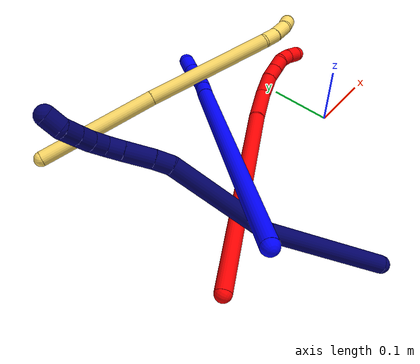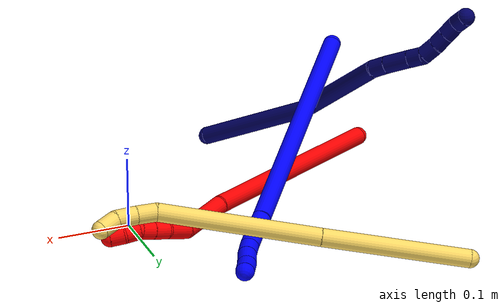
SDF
<sdf version="1.7">
 <world name="default">
  <model name="1">
   <static>0</static>
   <link name="1">
    <collision name="collision-cylinder-e_1_1_4">
     <pose>0.001342 0.022761 -0.187699 -3.02092 0.0071 -0.117398</pose>
     <geometry><cylinder><radius>0.0125</radius><length>0.378158</length></cylinder></geometry>
     <surface>
      <friction><ode><mu>1.16</mu><mu2>1.16</mu2><slip1>0</slip1><slip2>0</slip2></ode></friction>
      <contact><ode><kp>1e+06</kp><kd>1</kd><max_vel>0</max_vel><min_depth>0.001</min_depth></ode></contact>
     </surface>
    </collision>
    <visual name="visual-cylinder-e_1_1_4">
     <pose>0.001342 0.022761 -0.187699 -3.02092 0.0071 -0.117398</pose>
     <geometry><cylinder><radius>0.0125</radius><length>0.378158</length></cylinder></geometry>
     <material><ambient>0 0 1 1</ambient></material>
    </visual>
    <collision name="collision-cylinder-e_2_4_5">
     <pose>0.004165 0.047129 -0.390256 -3.03385 0.098694 -1.48306</pose>
     <geometry><cylinder><radius>0.0125</radius><length>0.030034</length></cylinder></geometry>
     <surface>
      <friction><ode><mu>1.16</mu><mu2>1.16</mu2><slip1>0</slip1><slip2>0</slip2></ode></friction>
      <contact><ode><kp>1e+06</kp><kd>1</kd><max_vel>0</max_vel><min_depth>0.001</min_depth></ode></contact>
     </surface>
    </collision>
    <visual name="visual-cylinder-e_2_4_5">
     <pose>0.004165 0.047129 -0.390256 -3.03385 0.098694 -1.48306</pose>
     <geometry><cylinder><radius>0.0125</radius><length>0.030034</length></cylinder></geometry>
     <material><ambient>0 0 1 1</ambient></material>
    </visual>
    <collision name="collision-cylinder-e_3_5_6">
     <pose>0.006787 0.049477 -0.415746 -3.07197 0.106773 -1.98647</pose>
     <geometry><cylinder><radius>0.0125</radius><length>0.02144</length></cylinder></geometry>
     <surface>
      <friction><ode><mu>1.16</mu><mu2>1.16</mu2><slip1>0</slip1><slip2>0</slip2></ode></friction>
      <contact><ode><kp>1e+06</kp><kd>1</kd><max_vel>0</max_vel><min_depth>0.001</min_depth></ode></contact>
     </surface>
    </collision>
    <visual name="visual-cylinder-e_3_5_6">
     <pose>0.006787 0.049477 -0.415746 -3.07197 0.106773 -1.98647</pose>
     <geometry><cylinder><radius>0.0125</radius><length>0.02144</length></cylinder></geometry>
     <material><ambient>0 0 1 1</ambient></material>
    </visual>
    <collision name="collision-cylinder-e_4_6_7">
     <pose>0.005461 0.052015 -0.437085 -2.97534 -0.223591 1.86464</pose>
     <geometry><cylinder><radius>0.0125</radius><length>0.022265</length></cylinder></geometry>
     <surface>
      <friction><ode><mu>1.16</mu><mu2>1.16</mu2><slip1>0</slip1><slip2>0</slip2></ode></friction>
      <contact><ode><kp>1e+06</kp><kd>1</kd><max_vel>0</max_vel><min_depth>0.001</min_depth></ode></contact>
     </surface>
    </collision>
    <visual name="visual-cylinder-e_4_6_7">
     <pose>0.005461 0.052015 -0.437085 -2.97534 -0.223591 1.86464</pose>
     <geometry><cylinder><radius>0.0125</radius><length>0.022265</length></cylinder></geometry>
     <material><ambient>0 0 1 1</ambient></material>
    </visual>
    <collision name="collision-cylinder-e_5_7_8">
     <pose>-0.000926 0.054727 -0.459162 -3.06129 -0.33082 2.66929</pose>
     <geometry><cylinder><radius>0.0125</radius><length>0.024125</length></cylinder></geometry>
     <surface>
      <friction><ode><mu>1.16</mu><mu2>1.16</mu2><slip1>0</slip1><slip2>0</slip2></ode></friction>
      <contact><ode><kp>1e+06</kp><kd>1</kd><max_vel>0</max_vel><min_depth>0.001</min_depth></ode></contact>
     </surface>
    </collision>
    <visual name="visual-cylinder-e_5_7_8">
     <pose>-0.000926 0.054727 -0.459162 -3.06129 -0.33082 2.66929</pose>
     <geometry><cylinder><radius>0.0125</radius><length>0.024125</length></cylinder></geometry>
     <material><ambient>0 0 1 1</ambient></material>
    </visual>
    <collision name="collision-cylinder-e_6_8_2">
     <pose>-0.009077 0.058403 -0.481406 -2.89285 -0.36087 1.93996</pose>
     <geometry><cylinder><radius>0.0125</radius><length>0.023978</length></cylinder></geometry>
     <surface>
      <friction><ode><mu>1.16</mu><mu2>1.16</mu2><slip1>0</slip1><slip2>0</slip2></ode></friction>
      <contact><ode><kp>1e+06</kp><kd>1</kd><max_vel>0</max_vel><min_depth>0.001</min_depth></ode></contact>
     </surface>
    </collision>
    <visual name="visual-cylinder-e_6_8_2">
     <pose>-0.009077 0.058403 -0.481406 -2.89285 -0.36087 1.93996</pose>
     <geometry><cylinder><radius>0.0125</radius><length>0.023978</length></cylinder></geometry>
     <material><ambient>0 0 1 1</ambient></material>
    </visual>
    <collision name="collision-sphere-2">
     <pose>-0.01331 0.061165 -0.492277 0 -0 0</pose>
     <geometry><sphere><radius>0.0125</radius></sphere></geometry>
     <surface>
      <friction><ode><mu>1.16</mu><mu2>1.16</mu2><slip1>0</slip1><slip2>0</slip2></ode></friction>
      <contact><ode><kp>1e+06</kp><kd>1</kd><max_vel>0</max_vel><min_depth>0.001</min_depth></ode></contact>
     </surface>
    </collision>
    <visual name="visual-sphere-2">
     <pose>-0.01331 0.061165 -0.492277 0 -0 0</pose>
     <geometry><sphere><radius>0.0125</radius></sphere></geometry>
     <material><ambient>0 0 1 1</ambient></material>
    </visual>
    <collision name="collision-sphere-4">
     <pose>0.002685 0.045522 -0.375398 0 -0 0</pose>
     <geometry><sphere><radius>0.0125</radius></sphere></geometry>
     <surface>
      <friction><ode><mu>1.16</mu><mu2>1.16</mu2><slip1>0</slip1><slip2>0</slip2></ode></friction>
      <contact><ode><kp>1e+06</kp><kd>1</kd><max_vel>0</max_vel><min_depth>0.001</min_depth></ode></contact>
     </surface>
    </collision>
    <visual name="visual-sphere-4">
     <pose>0.002685 0.045522 -0.375398 0 -0 0</pose>
     <geometry><sphere><radius>0.0125</radius></sphere></geometry>
     <material><ambient>0 0 1 1</ambient></material>
    </visual>
    <collision name="collision-sphere-1">
     <geometry><sphere><radius>0.0125</radius></sphere></geometry>
     <surface>
      <friction><ode><mu>1.16</mu><mu2>1.16</mu2><slip1>0</slip1><slip2>0</slip2></ode></friction>
      <contact><ode><kp>1e+06</kp><kd>1</kd><max_vel>0</max_vel><min_depth>0.001</min_depth></ode></contact>
     </surface>
    </collision>
    <visual name="visual-sphere-1">
     <geometry><sphere><radius>0.0125</radius></sphere></geometry>
     <material><ambient>0 0 1 1</ambient></material>
    </visual>
    <collision name="collision-sphere-8">
     <pose>-0.004844 0.055642 -0.470534 0 -0 0</pose>
     <geometry><sphere><radius>0.0125</radius></sphere></geometry>
     <surface>
      <friction><ode><mu>1.16</mu><mu2>1.16</mu2><slip1>0</slip1><slip2>0</slip2></ode></friction>
      <contact><ode><kp>1e+06</kp><kd>1</kd><max_vel>0</max_vel><min_depth>0.001</min_depth></ode></contact>
     </surface>
    </collision>
    <visual name="visual-sphere-8">
     <pose>-0.004844 0.055642 -0.470534 0 -0 0</pose>
     <geometry><sphere><radius>0.0125</radius></sphere></geometry>
     <material><ambient>0 0 1 1</ambient></material>
    </visual>
    <collision name="collision-sphere-5">
     <pose>0.005644 0.048736 -0.405113 0 -0 0</pose>
     <geometry><sphere><radius>0.0125</radius></sphere></geometry>
     <surface>
      <friction><ode><mu>1.16</mu><mu2>1.16</mu2><slip1>0</slip1><slip2>0</slip2></ode></friction>
      <contact><ode><kp>1e+06</kp><kd>1</kd><max_vel>0</max_vel><min_depth>0.001</min_depth></ode></contact>
     </surface>
    </collision>
    <visual name="visual-sphere-5">
     <pose>0.005644 0.048736 -0.405113 0 -0 0</pose>
     <geometry><sphere><radius>0.0125</radius></sphere></geometry>
     <material><ambient>0 0 1 1</ambient></material>
    </visual>
    <collision name="collision-sphere-6">
     <pose>0.007929 0.050219 -0.426379 0 -0 0</pose>
     <geometry><sphere><radius>0.0125</radius></sphere></geometry>
     <surface>
      <friction><ode><mu>1.16</mu><mu2>1.16</mu2><slip1>0</slip1><slip2>0</slip2></ode></friction>
      <contact><ode><kp>1e+06</kp><kd>1</kd><max_vel>0</max_vel><min_depth>0.001</min_depth></ode></contact>
     </surface>
    </collision>
    <visual name="visual-sphere-6">
     <pose>0.007929 0.050219 -0.426379 0 -0 0</pose>
     <geometry><sphere><radius>0.0125</radius></sphere></geometry>
     <material><ambient>0 0 1 1</ambient></material>
    </visual>
    <collision name="collision-sphere-7">
     <pose>0.002992 0.053812 -0.447791 0 -0 0</pose>
     <geometry><sphere><radius>0.0125</radius></sphere></geometry>
     <surface>
      <friction><ode><mu>1.16</mu><mu2>1.16</mu2><slip1>0</slip1><slip2>0</slip2></ode></friction>
      <contact><ode><kp>1e+06</kp><kd>1</kd><max_vel>0</max_vel><min_depth>0.001</min_depth></ode></contact>
     </surface>
    </collision>
    <visual name="visual-sphere-7">
     <pose>0.002992 0.053812 -0.447791 0 -0 0</pose>
     <geometry><sphere><radius>0.0125</radius></sphere></geometry>
     <material><ambient>0 0 1 1</ambient></material>
    </visual>
    <inertial>
     <pose>0.00132 0.029925 -0.247933 0 -0 0</pose>
     <mass>0.5</mass>
     <inertia>
      <ixx>0.003956</ixx>
      <ixy>0</ixy>
      <ixz>0</ixz>
      <iyy>-0.004979</iyy>
      <iyz>0</iyz>
      <izz>-0.000615</izz>
     </inertia>
    </inertial>
   </link>
   <pose>-0.358706 -0.133777 0.162223 1.0774 0.70933 -0.912112</pose>
  </model>
  <model name="2">
   <static>0</static>
   <link name="2">
    <collision name="collision-cylinder-e_1_1_4">
     <pose>0.121626 0.0782 -0.059984 -2.22512 0.889791 -1.53683</pose>
     <geometry><cylinder><radius>0.0125</radius><length>0.313089</length></cylinder></geometry>
     <surface>
      <friction><ode><mu>1.16</mu><mu2>1.16</mu2><slip1>0</slip1><slip2>0</slip2></ode></friction>
      <contact><ode><kp>1e+06</kp><kd>1</kd><max_vel>0</max_vel><min_depth>0.001</min_depth></ode></contact>
     </surface>
    </collision>
    <visual name="visual-cylinder-e_1_1_4">
     <pose>0.121626 0.0782 -0.059984 -2.22512 0.889791 -1.53683</pose>
     <geometry><cylinder><radius>0.0125</radius><length>0.313089</length></cylinder></geometry>
     <material><ambient>1 0 0 1</ambient></material>
    </visual>
    <collision name="collision-cylinder-e_2_4_5">
     <pose>0.273727 0.167955 -0.132087 -2.38006 1.06839 -1.95178</pose>
     <geometry><cylinder><radius>0.0125</radius><length>0.069544</length></cylinder></geometry>
     <surface>
      <friction><ode><mu>1.16</mu><mu2>1.16</mu2><slip1>0</slip1><slip2>0</slip2></ode></friction>
      <contact><ode><kp>1e+06</kp><kd>1</kd><max_vel>0</max_vel><min_depth>0.001</min_depth></ode></contact>
     </surface>
    </collision>
    <visual name="visual-cylinder-e_2_4_5">
     <pose>0.273727 0.167955 -0.132087 -2.38006 1.06839 -1.95178</pose>
     <geometry><cylinder><radius>0.0125</radius><length>0.069544</length></cylinder></geometry>
     <material><ambient>1 0 0 1</ambient></material>
    </visual>
    <collision name="collision-cylinder-e_3_5_6">
     <pose>0.315531 0.192477 -0.147828 -1.84319 0.699446 -0.895943</pose>
     <geometry><cylinder><radius>0.0125</radius><length>0.035194</length></cylinder></geometry>
     <surface>
      <friction><ode><mu>1.16</mu><mu2>1.16</mu2><slip1>0</slip1><slip2>0</slip2></ode></friction>
      <contact><ode><kp>1e+06</kp><kd>1</kd><max_vel>0</max_vel><min_depth>0.001</min_depth></ode></contact>
     </surface>
    </collision>
    <visual name="visual-cylinder-e_3_5_6">
     <pose>0.315531 0.192477 -0.147828 -1.84319 0.699446 -0.895943</pose>
     <geometry><cylinder><radius>0.0125</radius><length>0.035194</length></cylinder></geometry>
     <material><ambient>1 0 0 1</ambient></material>
    </visual>
    <collision name="collision-cylinder-e_4_6_7">
     <pose>0.334757 0.212996 -0.151751 -1.6105 0.807529 -0.836619</pose>
     <geometry><cylinder><radius>0.0125</radius><length>0.021859</length></cylinder></geometry>
     <surface>
      <friction><ode><mu>1.16</mu><mu2>1.16</mu2><slip1>0</slip1><slip2>0</slip2></ode></friction>
      <contact><ode><kp>1e+06</kp><kd>1</kd><max_vel>0</max_vel><min_depth>0.001</min_depth></ode></contact>
     </surface>
    </collision>
    <visual name="visual-cylinder-e_4_6_7">
     <pose>0.334757 0.212996 -0.151751 -1.6105 0.807529 -0.836619</pose>
     <geometry><cylinder><radius>0.0125</radius><length>0.021859</length></cylinder></geometry>
     <material><ambient>1 0 0 1</ambient></material>
    </visual>
    <collision name="collision-cylinder-e_5_7_8">
     <pose>0.349725 0.227728 -0.152352 -1.61273 0.777082 -0.806937</pose>
     <geometry><cylinder><radius>0.0125</radius><length>0.020168</length></cylinder></geometry>
     <surface>
      <friction><ode><mu>1.16</mu><mu2>1.16</mu2><slip1>0</slip1><slip2>0</slip2></ode></friction>
      <contact><ode><kp>1e+06</kp><kd>1</kd><max_vel>0</max_vel><min_depth>0.001</min_depth></ode></contact>
     </surface>
    </collision>
    <visual name="visual-cylinder-e_5_7_8">
     <pose>0.349725 0.227728 -0.152352 -1.61273 0.777082 -0.806937</pose>
     <geometry><cylinder><radius>0.0125</radius><length>0.020168</length></cylinder></geometry>
     <material><ambient>1 0 0 1</ambient></material>
    </visual>
    <collision name="collision-cylinder-e_6_8_9">
     <pose>0.365901 0.238875 -0.151025 -1.18087 1.13088 -0.804202</pose>
     <geometry><cylinder><radius>0.0125</radius><length>0.020125</length></cylinder></geometry>
     <surface>
      <friction><ode><mu>1.16</mu><mu2>1.16</mu2><slip1>0</slip1><slip2>0</slip2></ode></friction>
      <contact><ode><kp>1e+06</kp><kd>1</kd><max_vel>0</max_vel><min_depth>0.001</min_depth></ode></contact>
     </surface>
    </collision>
    <visual name="visual-cylinder-e_6_8_9">
     <pose>0.365901 0.238875 -0.151025 -1.18087 1.13088 -0.804202</pose>
     <geometry><cylinder><radius>0.0125</radius><length>0.020125</length></cylinder></geometry>
     <material><ambient>1 0 0 1</ambient></material>
    </visual>
    <collision name="collision-cylinder-e_7_9_2">
     <pose>0.383669 0.246072 -0.145564 -0.70088 1.04617 -0.415492</pose>
     <geometry><cylinder><radius>0.0125</radius><length>0.020021</length></cylinder></geometry>
     <surface>
      <friction><ode><mu>1.16</mu><mu2>1.16</mu2><slip1>0</slip1><slip2>0</slip2></ode></friction>
      <contact><ode><kp>1e+06</kp><kd>1</kd><max_vel>0</max_vel><min_depth>0.001</min_depth></ode></contact>
     </surface>
    </collision>
    <visual name="visual-cylinder-e_7_9_2">
     <pose>0.383669 0.246072 -0.145564 -0.70088 1.04617 -0.415492</pose>
     <geometry><cylinder><radius>0.0125</radius><length>0.020021</length></cylinder></geometry>
     <material><ambient>1 0 0 1</ambient></material>
    </visual>
    <collision name="collision-sphere-2">
     <pose>0.392333 0.249306 -0.141731 0 -0 0</pose>
     <geometry><sphere><radius>0.0125</radius></sphere></geometry>
     <surface>
      <friction><ode><mu>1.16</mu><mu2>1.16</mu2><slip1>0</slip1><slip2>0</slip2></ode></friction>
      <contact><ode><kp>1e+06</kp><kd>1</kd><max_vel>0</max_vel><min_depth>0.001</min_depth></ode></contact>
     </surface>
    </collision>
    <visual name="visual-sphere-2">
     <pose>0.392333 0.249306 -0.141731 0 -0 0</pose>
     <geometry><sphere><radius>0.0125</radius></sphere></geometry>
     <material><ambient>1 0 0 1</ambient></material>
    </visual>
    <collision name="collision-sphere-9">
     <pose>0.375005 0.242838 -0.149396 0 -0 0</pose>
     <geometry><sphere><radius>0.0125</radius></sphere></geometry>
     <surface>
      <friction><ode><mu>1.16</mu><mu2>1.16</mu2><slip1>0</slip1><slip2>0</slip2></ode></friction>
      <contact><ode><kp>1e+06</kp><kd>1</kd><max_vel>0</max_vel><min_depth>0.001</min_depth></ode></contact>
     </surface>
    </collision>
    <visual name="visual-sphere-9">
     <pose>0.375005 0.242838 -0.149396 0 -0 0</pose>
     <geometry><sphere><radius>0.0125</radius></sphere></geometry>
     <material><ambient>1 0 0 1</ambient></material>
    </visual>
    <collision name="collision-sphere-4">
     <pose>0.243252 0.156401 -0.119968 0 -0 0</pose>
     <geometry><sphere><radius>0.0125</radius></sphere></geometry>
     <surface>
      <friction><ode><mu>1.16</mu><mu2>1.16</mu2><slip1>0</slip1><slip2>0</slip2></ode></friction>
      <contact><ode><kp>1e+06</kp><kd>1</kd><max_vel>0</max_vel><min_depth>0.001</min_depth></ode></contact>
     </surface>
    </collision>
    <visual name="visual-sphere-4">
     <pose>0.243252 0.156401 -0.119968 0 -0 0</pose>
     <geometry><sphere><radius>0.0125</radius></sphere></geometry>
     <material><ambient>1 0 0 1</ambient></material>
    </visual>
    <collision name="collision-sphere-1">
     <geometry><sphere><radius>0.0125</radius></sphere></geometry>
     <surface>
      <friction><ode><mu>1.16</mu><mu2>1.16</mu2><slip1>0</slip1><slip2>0</slip2></ode></friction>
      <contact><ode><kp>1e+06</kp><kd>1</kd><max_vel>0</max_vel><min_depth>0.001</min_depth></ode></contact>
     </surface>
    </collision>
    <visual name="visual-sphere-1">
     <geometry><sphere><radius>0.0125</radius></sphere></geometry>
     <material><ambient>1 0 0 1</ambient></material>
    </visual>
    <collision name="collision-sphere-8">
     <pose>0.356796 0.234911 -0.152654 0 -0 0</pose>
     <geometry><sphere><radius>0.0125</radius></sphere></geometry>
     <surface>
      <friction><ode><mu>1.16</mu><mu2>1.16</mu2><slip1>0</slip1><slip2>0</slip2></ode></friction>
      <contact><ode><kp>1e+06</kp><kd>1</kd><max_vel>0</max_vel><min_depth>0.001</min_depth></ode></contact>
     </surface>
    </collision>
    <visual name="visual-sphere-8">
     <pose>0.356796 0.234911 -0.152654 0 -0 0</pose>
     <geometry><sphere><radius>0.0125</radius></sphere></geometry>
     <material><ambient>1 0 0 1</ambient></material>
    </visual>
    <collision name="collision-sphere-5">
     <pose>0.304202 0.179508 -0.144205 0 -0 0</pose>
     <geometry><sphere><radius>0.0125</radius></sphere></geometry>
     <surface>
      <friction><ode><mu>1.16</mu><mu2>1.16</mu2><slip1>0</slip1><slip2>0</slip2></ode></friction>
      <contact><ode><kp>1e+06</kp><kd>1</kd><max_vel>0</max_vel><min_depth>0.001</min_depth></ode></contact>
     </surface>
    </collision>
    <visual name="visual-sphere-5">
     <pose>0.304202 0.179508 -0.144205 0 -0 0</pose>
     <geometry><sphere><radius>0.0125</radius></sphere></geometry>
     <material><ambient>1 0 0 1</ambient></material>
    </visual>
    <collision name="collision-sphere-6">
     <pose>0.32686 0.205446 -0.151451 0 -0 0</pose>
     <geometry><sphere><radius>0.0125</radius></sphere></geometry>
     <surface>
      <friction><ode><mu>1.16</mu><mu2>1.16</mu2><slip1>0</slip1><slip2>0</slip2></ode></friction>
      <contact><ode><kp>1e+06</kp><kd>1</kd><max_vel>0</max_vel><min_depth>0.001</min_depth></ode></contact>
     </surface>
    </collision>
    <visual name="visual-sphere-6">
     <pose>0.32686 0.205446 -0.151451 0 -0 0</pose>
     <geometry><sphere><radius>0.0125</radius></sphere></geometry>
     <material><ambient>1 0 0 1</ambient></material>
    </visual>
    <collision name="collision-sphere-7">
     <pose>0.342655 0.220545 -0.152051 0 -0 0</pose>
     <geometry><sphere><radius>0.0125</radius></sphere></geometry>
     <surface>
      <friction><ode><mu>1.16</mu><mu2>1.16</mu2><slip1>0</slip1><slip2>0</slip2></ode></friction>
      <contact><ode><kp>1e+06</kp><kd>1</kd><max_vel>0</max_vel><min_depth>0.001</min_depth></ode></contact>
     </surface>
    </collision>
    <visual name="visual-sphere-7">
     <pose>0.342655 0.220545 -0.152051 0 -0 0</pose>
     <geometry><sphere><radius>0.0125</radius></sphere></geometry>
     <material><ambient>1 0 0 1</ambient></material>
    </visual>
    <inertial>
     <pose>0.195273 0.123841 -0.091024 0 -0 0</pose>
     <mass>0.5</mass>
     <inertia>
      <ixx>-0.001551</ixx>
      <ixy>0</ixy>
      <ixz>0</ixz>
      <iyy>-5.5e-05</iyy>
      <iyz>0</iyz>
      <izz>-0.003344</izz>
     </inertia>
    </inertial>
   </link>
   <pose>-0.38109 -0.088815 0.033182 1.58792 0.548737 0.129745</pose>
  </model>
  <model name="5">
   <static>0</static>
   <link name="5">
    <collision name="collision-cylinder-e_1_1_4">
     <pose>-0.057398 -0.078046 0.025982 1.24943 -0.609241 -0.44587</pose>
     <geometry><cylinder><radius>0.0125</radius><length>0.200607</length></cylinder></geometry>
     <surface>
      <friction><ode><mu>1.16</mu><mu2>1.16</mu2><slip1>0</slip1><slip2>0</slip2></ode></friction>
      <contact><ode><kp>1e+06</kp><kd>1</kd><max_vel>0</max_vel><min_depth>0.001</min_depth></ode></contact>
     </surface>
    </collision>
    <visual name="visual-cylinder-e_1_1_4">
     <pose>-0.057398 -0.078046 0.025982 1.24943 -0.609241 -0.44587</pose>
     <geometry><cylinder><radius>0.0125</radius><length>0.200607</length></cylinder></geometry>
     <material><ambient>1 0.858824 0.4 1</ambient></material>
    </visual>
    <collision name="collision-cylinder-e_2_4_5">
     <pose>-0.180497 -0.238496 0.079035 1.25339 -0.648264 -0.477275</pose>
     <geometry><cylinder><radius>0.0125</radius><length>0.217622</length></cylinder></geometry>
     <surface>
      <friction><ode><mu>1.16</mu><mu2>1.16</mu2><slip1>0</slip1><slip2>0</slip2></ode></friction>
      <contact><ode><kp>1e+06</kp><kd>1</kd><max_vel>0</max_vel><min_depth>0.001</min_depth></ode></contact>
     </surface>
    </collision>
    <visual name="visual-cylinder-e_2_4_5">
     <pose>-0.180497 -0.238496 0.079035 1.25339 -0.648264 -0.477275</pose>
     <geometry><cylinder><radius>0.0125</radius><length>0.217622</length></cylinder></geometry>
     <material><ambient>1 0.858824 0.4 1</ambient></material>
    </visual>
    <collision name="collision-cylinder-e_3_5_6">
     <pose>-0.251705 -0.33324 0.106702 1.52244 -0.419402 -0.400132</pose>
     <geometry><cylinder><radius>0.0125</radius><length>0.027053</length></cylinder></geometry>
     <surface>
      <friction><ode><mu>1.16</mu><mu2>1.16</mu2><slip1>0</slip1><slip2>0</slip2></ode></friction>
      <contact><ode><kp>1e+06</kp><kd>1</kd><max_vel>0</max_vel><min_depth>0.001</min_depth></ode></contact>
     </surface>
    </collision>
    <visual name="visual-cylinder-e_3_5_6">
     <pose>-0.251705 -0.33324 0.106702 1.52244 -0.419402 -0.400132</pose>
     <geometry><cylinder><radius>0.0125</radius><length>0.027053</length></cylinder></geometry>
     <material><ambient>1 0.858824 0.4 1</ambient></material>
    </visual>
    <collision name="collision-cylinder-e_4_6_7">
     <pose>-0.260852 -0.359507 0.108369 1.49414 -0.254824 -0.236183</pose>
     <geometry><cylinder><radius>0.0125</radius><length>0.02887</length></cylinder></geometry>
     <surface>
      <friction><ode><mu>1.16</mu><mu2>1.16</mu2><slip1>0</slip1><slip2>0</slip2></ode></friction>
      <contact><ode><kp>1e+06</kp><kd>1</kd><max_vel>0</max_vel><min_depth>0.001</min_depth></ode></contact>
     </surface>
    </collision>
    <visual name="visual-cylinder-e_4_6_7">
     <pose>-0.260852 -0.359507 0.108369 1.49414 -0.254824 -0.236183</pose>
     <geometry><cylinder><radius>0.0125</radius><length>0.02887</length></cylinder></geometry>
     <material><ambient>1 0.858824 0.4 1</ambient></material>
    </visual>
    <collision name="collision-cylinder-e_5_7_2">
     <pose>-0.263271 -0.38617 0.107602 1.7141 0.094564 0.109162</pose>
     <geometry><cylinder><radius>0.0125</radius><length>0.025848</length></cylinder></geometry>
     <surface>
      <friction><ode><mu>1.16</mu><mu2>1.16</mu2><slip1>0</slip1><slip2>0</slip2></ode></friction>
      <contact><ode><kp>1e+06</kp><kd>1</kd><max_vel>0</max_vel><min_depth>0.001</min_depth></ode></contact>
     </surface>
    </collision>
    <visual name="visual-cylinder-e_5_7_2">
     <pose>-0.263271 -0.38617 0.107602 1.7141 0.094564 0.109162</pose>
     <geometry><cylinder><radius>0.0125</radius><length>0.025848</length></cylinder></geometry>
     <material><ambient>1 0.858824 0.4 1</ambient></material>
    </visual>
    <collision name="collision-sphere-2">
     <pose>-0.26205 -0.398904 0.105764 0 -0 0</pose>
     <geometry><sphere><radius>0.0125</radius></sphere></geometry>
     <surface>
      <friction><ode><mu>1.16</mu><mu2>1.16</mu2><slip1>0</slip1><slip2>0</slip2></ode></friction>
      <contact><ode><kp>1e+06</kp><kd>1</kd><max_vel>0</max_vel><min_depth>0.001</min_depth></ode></contact>
     </surface>
    </collision>
    <visual name="visual-sphere-2">
     <pose>-0.26205 -0.398904 0.105764 0 -0 0</pose>
     <geometry><sphere><radius>0.0125</radius></sphere></geometry>
     <material><ambient>1 0.858824 0.4 1</ambient></material>
    </visual>
    <collision name="collision-sphere-7">
     <pose>-0.264491 -0.373435 0.109439 0 -0 0</pose>
     <geometry><sphere><radius>0.0125</radius></sphere></geometry>
     <surface>
      <friction><ode><mu>1.16</mu><mu2>1.16</mu2><slip1>0</slip1><slip2>0</slip2></ode></friction>
      <contact><ode><kp>1e+06</kp><kd>1</kd><max_vel>0</max_vel><min_depth>0.001</min_depth></ode></contact>
     </surface>
    </collision>
    <visual name="visual-sphere-7">
     <pose>-0.264491 -0.373435 0.109439 0 -0 0</pose>
     <geometry><sphere><radius>0.0125</radius></sphere></geometry>
     <material><ambient>1 0.858824 0.4 1</ambient></material>
    </visual>
    <collision name="collision-sphere-6">
     <pose>-0.257213 -0.345579 0.1073 0 -0 0</pose>
     <geometry><sphere><radius>0.0125</radius></sphere></geometry>
     <surface>
      <friction><ode><mu>1.16</mu><mu2>1.16</mu2><slip1>0</slip1><slip2>0</slip2></ode></friction>
      <contact><ode><kp>1e+06</kp><kd>1</kd><max_vel>0</max_vel><min_depth>0.001</min_depth></ode></contact>
     </surface>
    </collision>
    <visual name="visual-sphere-6">
     <pose>-0.257213 -0.345579 0.1073 0 -0 0</pose>
     <geometry><sphere><radius>0.0125</radius></sphere></geometry>
     <material><ambient>1 0.858824 0.4 1</ambient></material>
    </visual>
    <collision name="collision-sphere-5">
     <pose>-0.246197 -0.3209 0.106105 0 -0 0</pose>
     <geometry><sphere><radius>0.0125</radius></sphere></geometry>
     <surface>
      <friction><ode><mu>1.16</mu><mu2>1.16</mu2><slip1>0</slip1><slip2>0</slip2></ode></friction>
      <contact><ode><kp>1e+06</kp><kd>1</kd><max_vel>0</max_vel><min_depth>0.001</min_depth></ode></contact>
     </surface>
    </collision>
    <visual name="visual-sphere-5">
     <pose>-0.246197 -0.3209 0.106105 0 -0 0</pose>
     <geometry><sphere><radius>0.0125</radius></sphere></geometry>
     <material><ambient>1 0.858824 0.4 1</ambient></material>
    </visual>
    <collision name="collision-sphere-1">
     <geometry><sphere><radius>0.0125</radius></sphere></geometry>
     <surface>
      <friction><ode><mu>1.16</mu><mu2>1.16</mu2><slip1>0</slip1><slip2>0</slip2></ode></friction>
      <contact><ode><kp>1e+06</kp><kd>1</kd><max_vel>0</max_vel><min_depth>0.001</min_depth></ode></contact>
     </surface>
    </collision>
    <visual name="visual-sphere-1">
     <geometry><sphere><radius>0.0125</radius></sphere></geometry>
     <material><ambient>1 0.858824 0.4 1</ambient></material>
    </visual>
    <collision name="collision-sphere-4">
     <pose>-0.114797 -0.156092 0.051964 0 -0 0</pose>
     <geometry><sphere><radius>0.0125</radius></sphere></geometry>
     <surface>
      <friction><ode><mu>1.16</mu><mu2>1.16</mu2><slip1>0</slip1><slip2>0</slip2></ode></friction>
      <contact><ode><kp>1e+06</kp><kd>1</kd><max_vel>0</max_vel><min_depth>0.001</min_depth></ode></contact>
     </surface>
    </collision>
    <visual name="visual-sphere-4">
     <pose>-0.114797 -0.156092 0.051964 0 -0 0</pose>
     <geometry><sphere><radius>0.0125</radius></sphere></geometry>
     <material><ambient>1 0.858824 0.4 1</ambient></material>
    </visual>
    <inertial>
     <pose>-0.14388 -0.193869 0.062417 0 -0 0</pose>
     <mass>0.5</mass>
     <inertia>
      <ixx>0.000545</ixx>
      <ixy>0</ixy>
      <ixz>0</ixz>
      <iyy>0.000232</iyy>
      <iyz>0</iyz>
      <izz>0.002117</izz>
     </inertia>
    </inertial>
   </link>
   <pose>-0.375995 0.284919 0.011494 0.099799 0.004997 1.85805</pose>
  </model>
  <model name="7">
   <static>0</static>
   <link name="7">
    <collision name="collision-cylinder-e_1_1_4">
     <pose>-0.000931 0.079252 0.037873 -1.125 -0.0106 0.006683</pose>
     <geometry><cylinder><radius>0.0125</radius><length>0.175683</length></cylinder></geometry>
     <surface>
      <friction><ode><mu>1.16</mu><mu2>1.16</mu2><slip1>0</slip1><slip2>0</slip2></ode></friction>
      <contact><ode><kp>1e+06</kp><kd>1</kd><max_vel>0</max_vel><min_depth>0.001</min_depth></ode></contact>
     </surface>
    </collision>
    <visual name="visual-cylinder-e_1_1_4">
     <pose>-0.000931 0.079252 0.037873 -1.125 -0.0106 0.006683</pose>
     <geometry><cylinder><radius>0.0125</radius><length>0.175683</length></cylinder></geometry>
     <material><ambient>0.003922 0 0.403922 1</ambient></material>
    </visual>
    <collision name="collision-cylinder-e_2_4_5">
     <pose>0.007907 0.217313 0.126063 -0.863056 0.125554 -0.057874</pose>
     <geometry><cylinder><radius>0.0125</radius><length>0.156023</length></cylinder></geometry>
     <surface>
      <friction><ode><mu>1.16</mu><mu2>1.16</mu2><slip1>0</slip1><slip2>0</slip2></ode></friction>
      <contact><ode><kp>1e+06</kp><kd>1</kd><max_vel>0</max_vel><min_depth>0.001</min_depth></ode></contact>
     </surface>
    </collision>
    <visual name="visual-cylinder-e_2_4_5">
     <pose>0.007907 0.217313 0.126063 -0.863056 0.125554 -0.057874</pose>
     <geometry><cylinder><radius>0.0125</radius><length>0.156023</length></cylinder></geometry>
     <material><ambient>0.003922 0 0.403922 1</ambient></material>
    </visual>
    <collision name="collision-cylinder-e_3_5_6">
     <pose>0.017685 0.286679 0.181831 -1.09414 0.000797 -0.000485</pose>
     <geometry><cylinder><radius>0.0125</radius><length>0.023761</length></cylinder></geometry>
     <surface>
      <friction><ode><mu>1.16</mu><mu2>1.16</mu2><slip1>0</slip1><slip2>0</slip2></ode></friction>
      <contact><ode><kp>1e+06</kp><kd>1</kd><max_vel>0</max_vel><min_depth>0.001</min_depth></ode></contact>
     </surface>
    </collision>
    <visual name="visual-cylinder-e_3_5_6">
     <pose>0.017685 0.286679 0.181831 -1.09414 0.000797 -0.000485</pose>
     <geometry><cylinder><radius>0.0125</radius><length>0.023761</length></cylinder></geometry>
     <material><ambient>0.003922 0 0.403922 1</ambient></material>
    </visual>
    <collision name="collision-cylinder-e_4_6_7">
     <pose>0.017045 0.314385 0.194811 -1.1571 -0.034676 0.022648</pose>
     <geometry><cylinder><radius>0.0125</radius><length>0.037483</length></cylinder></geometry>
     <surface>
      <friction><ode><mu>1.16</mu><mu2>1.16</mu2><slip1>0</slip1><slip2>0</slip2></ode></friction>
      <contact><ode><kp>1e+06</kp><kd>1</kd><max_vel>0</max_vel><min_depth>0.001</min_depth></ode></contact>
     </surface>
    </collision>
    <visual name="visual-cylinder-e_4_6_7">
     <pose>0.017045 0.314385 0.194811 -1.1571 -0.034676 0.022648</pose>
     <geometry><cylinder><radius>0.0125</radius><length>0.037483</length></cylinder></geometry>
     <material><ambient>0.003922 0 0.403922 1</ambient></material>
    </visual>
    <collision name="collision-cylinder-e_5_7_8">
     <pose>0.016333 0.341358 0.206674 -1.15536 -0.005779 0.003767</pose>
     <geometry><cylinder><radius>0.0125</radius><length>0.021473</length></cylinder></geometry>
     <surface>
      <friction><ode><mu>1.16</mu><mu2>1.16</mu2><slip1>0</slip1><slip2>0</slip2></ode></friction>
      <contact><ode><kp>1e+06</kp><kd>1</kd><max_vel>0</max_vel><min_depth>0.001</min_depth></ode></contact>
     </surface>
    </collision>
    <visual name="visual-cylinder-e_5_7_8">
     <pose>0.016333 0.341358 0.206674 -1.15536 -0.005779 0.003767</pose>
     <geometry><cylinder><radius>0.0125</radius><length>0.021473</length></cylinder></geometry>
     <material><ambient>0.003922 0 0.403922 1</ambient></material>
    </visual>
    <collision name="collision-cylinder-e_6_8_9">
     <pose>0.012391 0.358561 0.217807 -0.826311 -0.368961 0.163245</pose>
     <geometry><cylinder><radius>0.0125</radius><length>0.021517</length></cylinder></geometry>
     <surface>
      <friction><ode><mu>1.16</mu><mu2>1.16</mu2><slip1>0</slip1><slip2>0</slip2></ode></friction>
      <contact><ode><kp>1e+06</kp><kd>1</kd><max_vel>0</max_vel><min_depth>0.001</min_depth></ode></contact>
     </surface>
    </collision>
    <visual name="visual-cylinder-e_6_8_9">
     <pose>0.012391 0.358561 0.217807 -0.826311 -0.368961 0.163245</pose>
     <geometry><cylinder><radius>0.0125</radius><length>0.021517</length></cylinder></geometry>
     <material><ambient>0.003922 0 0.403922 1</ambient></material>
    </visual>
    <collision name="collision-cylinder-e_7_9_10">
     <pose>0.004853 0.372079 0.231874 -0.701303 -0.367105 0.135595</pose>
     <geometry><cylinder><radius>0.0125</radius><length>0.020383</length></cylinder></geometry>
     <surface>
      <friction><ode><mu>1.16</mu><mu2>1.16</mu2><slip1>0</slip1><slip2>0</slip2></ode></friction>
      <contact><ode><kp>1e+06</kp><kd>1</kd><max_vel>0</max_vel><min_depth>0.001</min_depth></ode></contact>
     </surface>
    </collision>
    <visual name="visual-cylinder-e_7_9_10">
     <pose>0.004853 0.372079 0.231874 -0.701303 -0.367105 0.135595</pose>
     <geometry><cylinder><radius>0.0125</radius><length>0.020383</length></cylinder></geometry>
     <material><ambient>0.003922 0 0.403922 1</ambient></material>
    </visual>
    <collision name="collision-cylinder-e_8_10_11">
     <pose>-0.00269 0.384807 0.247032 -0.695845 -0.361297 0.132285</pose>
     <geometry><cylinder><radius>0.0125</radius><length>0.021982</length></cylinder></geometry>
     <surface>
      <friction><ode><mu>1.16</mu><mu2>1.16</mu2><slip1>0</slip1><slip2>0</slip2></ode></friction>
      <contact><ode><kp>1e+06</kp><kd>1</kd><max_vel>0</max_vel><min_depth>0.001</min_depth></ode></contact>
     </surface>
    </collision>
    <visual name="visual-cylinder-e_8_10_11">
     <pose>-0.00269 0.384807 0.247032 -0.695845 -0.361297 0.132285</pose>
     <geometry><cylinder><radius>0.0125</radius><length>0.021982</length></cylinder></geometry>
     <material><ambient>0.003922 0 0.403922 1</ambient></material>
    </visual>
    <collision name="collision-cylinder-e_9_11_2">
     <pose>-0.004908 0.398914 0.262564 -0.777202 0.154338 -0.063294</pose>
     <geometry><cylinder><radius>0.0125</radius><length>0.021695</length></cylinder></geometry>
     <surface>
      <friction><ode><mu>1.16</mu><mu2>1.16</mu2><slip1>0</slip1><slip2>0</slip2></ode></friction>
      <contact><ode><kp>1e+06</kp><kd>1</kd><max_vel>0</max_vel><min_depth>0.001</min_depth></ode></contact>
     </surface>
    </collision>
    <visual name="visual-cylinder-e_9_11_2">
     <pose>-0.004908 0.398914 0.262564 -0.777202 0.154338 -0.063294</pose>
     <geometry><cylinder><radius>0.0125</radius><length>0.021695</length></cylinder></geometry>
     <material><ambient>0.003922 0 0.403922 1</ambient></material>
    </visual>
    <collision name="collision-sphere-2">
     <pose>-0.00324 0.406431 0.270205 0 -0 0</pose>
     <geometry><sphere><radius>0.0125</radius></sphere></geometry>
     <surface>
      <friction><ode><mu>1.16</mu><mu2>1.16</mu2><slip1>0</slip1><slip2>0</slip2></ode></friction>
      <contact><ode><kp>1e+06</kp><kd>1</kd><max_vel>0</max_vel><min_depth>0.001</min_depth></ode></contact>
     </surface>
    </collision>
    <visual name="visual-sphere-2">
     <pose>-0.00324 0.406431 0.270205 0 -0 0</pose>
     <geometry><sphere><radius>0.0125</radius></sphere></geometry>
     <material><ambient>0.003922 0 0.403922 1</ambient></material>
    </visual>
    <collision name="collision-sphere-11">
     <pose>-0.006575 0.391397 0.254923 0 -0 0</pose>
     <geometry><sphere><radius>0.0125</radius></sphere></geometry>
     <surface>
      <friction><ode><mu>1.16</mu><mu2>1.16</mu2><slip1>0</slip1><slip2>0</slip2></ode></friction>
      <contact><ode><kp>1e+06</kp><kd>1</kd><max_vel>0</max_vel><min_depth>0.001</min_depth></ode></contact>
     </surface>
    </collision>
    <visual name="visual-sphere-11">
     <pose>-0.006575 0.391397 0.254923 0 -0 0</pose>
     <geometry><sphere><radius>0.0125</radius></sphere></geometry>
     <material><ambient>0.003922 0 0.403922 1</ambient></material>
    </visual>
    <collision name="collision-sphere-10">
     <pose>0.001195 0.378216 0.239141 0 -0 0</pose>
     <geometry><sphere><radius>0.0125</radius></sphere></geometry>
     <surface>
      <friction><ode><mu>1.16</mu><mu2>1.16</mu2><slip1>0</slip1><slip2>0</slip2></ode></friction>
      <contact><ode><kp>1e+06</kp><kd>1</kd><max_vel>0</max_vel><min_depth>0.001</min_depth></ode></contact>
     </surface>
    </collision>
    <visual name="visual-sphere-10">
     <pose>0.001195 0.378216 0.239141 0 -0 0</pose>
     <geometry><sphere><radius>0.0125</radius></sphere></geometry>
     <material><ambient>0.003922 0 0.403922 1</ambient></material>
    </visual>
    <collision name="collision-sphere-9">
     <pose>0.008511 0.365941 0.224606 0 -0 0</pose>
     <geometry><sphere><radius>0.0125</radius></sphere></geometry>
     <surface>
      <friction><ode><mu>1.16</mu><mu2>1.16</mu2><slip1>0</slip1><slip2>0</slip2></ode></friction>
      <contact><ode><kp>1e+06</kp><kd>1</kd><max_vel>0</max_vel><min_depth>0.001</min_depth></ode></contact>
     </surface>
    </collision>
    <visual name="visual-sphere-9">
     <pose>0.008511 0.365941 0.224606 0 -0 0</pose>
     <geometry><sphere><radius>0.0125</radius></sphere></geometry>
     <material><ambient>0.003922 0 0.403922 1</ambient></material>
    </visual>
    <collision name="collision-sphere-4">
     <pose>-0.001862 0.158504 0.075745 0 -0 0</pose>
     <geometry><sphere><radius>0.0125</radius></sphere></geometry>
     <surface>
      <friction><ode><mu>1.16</mu><mu2>1.16</mu2><slip1>0</slip1><slip2>0</slip2></ode></friction>
      <contact><ode><kp>1e+06</kp><kd>1</kd><max_vel>0</max_vel><min_depth>0.001</min_depth></ode></contact>
     </surface>
    </collision>
    <visual name="visual-sphere-4">
     <pose>-0.001862 0.158504 0.075745 0 -0 0</pose>
     <geometry><sphere><radius>0.0125</radius></sphere></geometry>
     <material><ambient>0.003922 0 0.403922 1</ambient></material>
    </visual>
    <collision name="collision-sphere-1">
     <geometry><sphere><radius>0.0125</radius></sphere></geometry>
     <surface>
      <friction><ode><mu>1.16</mu><mu2>1.16</mu2><slip1>0</slip1><slip2>0</slip2></ode></friction>
      <contact><ode><kp>1e+06</kp><kd>1</kd><max_vel>0</max_vel><min_depth>0.001</min_depth></ode></contact>
     </surface>
    </collision>
    <visual name="visual-sphere-1">
     <geometry><sphere><radius>0.0125</radius></sphere></geometry>
     <material><ambient>0.003922 0 0.403922 1</ambient></material>
    </visual>
    <collision name="collision-sphere-8">
     <pose>0.016271 0.351181 0.211007 0 -0 0</pose>
     <geometry><sphere><radius>0.0125</radius></sphere></geometry>
     <surface>
      <friction><ode><mu>1.16</mu><mu2>1.16</mu2><slip1>0</slip1><slip2>0</slip2></ode></friction>
      <contact><ode><kp>1e+06</kp><kd>1</kd><max_vel>0</max_vel><min_depth>0.001</min_depth></ode></contact>
     </surface>
    </collision>
    <visual name="visual-sphere-8">
     <pose>0.016271 0.351181 0.211007 0 -0 0</pose>
     <geometry><sphere><radius>0.0125</radius></sphere></geometry>
     <material><ambient>0.003922 0 0.403922 1</ambient></material>
    </visual>
    <collision name="collision-sphere-5">
     <pose>0.017676 0.276123 0.17638 0 -0 0</pose>
     <geometry><sphere><radius>0.0125</radius></sphere></geometry>
     <surface>
      <friction><ode><mu>1.16</mu><mu2>1.16</mu2><slip1>0</slip1><slip2>0</slip2></ode></friction>
      <contact><ode><kp>1e+06</kp><kd>1</kd><max_vel>0</max_vel><min_depth>0.001</min_depth></ode></contact>
     </surface>
    </collision>
    <visual name="visual-sphere-5">
     <pose>0.017676 0.276123 0.17638 0 -0 0</pose>
     <geometry><sphere><radius>0.0125</radius></sphere></geometry>
     <material><ambient>0.003922 0 0.403922 1</ambient></material>
    </visual>
    <collision name="collision-sphere-6">
     <pose>0.017695 0.297235 0.187282 0 -0 0</pose>
     <geometry><sphere><radius>0.0125</radius></sphere></geometry>
     <surface>
      <friction><ode><mu>1.16</mu><mu2>1.16</mu2><slip1>0</slip1><slip2>0</slip2></ode></friction>
      <contact><ode><kp>1e+06</kp><kd>1</kd><max_vel>0</max_vel><min_depth>0.001</min_depth></ode></contact>
     </surface>
    </collision>
    <visual name="visual-sphere-6">
     <pose>0.017695 0.297235 0.187282 0 -0 0</pose>
     <geometry><sphere><radius>0.0125</radius></sphere></geometry>
     <material><ambient>0.003922 0 0.403922 1</ambient></material>
    </visual>
    <collision name="collision-sphere-7">
     <pose>0.016395 0.331535 0.202341 0 -0 0</pose>
     <geometry><sphere><radius>0.0125</radius></sphere></geometry>
     <surface>
      <friction><ode><mu>1.16</mu><mu2>1.16</mu2><slip1>0</slip1><slip2>0</slip2></ode></friction>
      <contact><ode><kp>1e+06</kp><kd>1</kd><max_vel>0</max_vel><min_depth>0.001</min_depth></ode></contact>
     </surface>
    </collision>
    <visual name="visual-sphere-7">
     <pose>0.016395 0.331535 0.202341 0 -0 0</pose>
     <geometry><sphere><radius>0.0125</radius></sphere></geometry>
     <material><ambient>0.003922 0 0.403922 1</ambient></material>
    </visual>
    <inertial>
     <pose>0.00536 0.212335 0.125845 0 -0 0</pose>
     <mass>0.5</mass>
     <inertia>
      <ixx>0.000779</ixx>
      <ixy>0</ixy>
      <ixz>0</ixz>
      <iyy>0.000435</iyy>
      <iyz>0</iyz>
      <izz>-0.000683</izz>
     </inertia>
    </inertial>
   </link>
   <pose>-0.198669 -0.21716 0.011496 -0.001941 0.169918 0.75889</pose>
  </model>
 </world>
</sdf>
